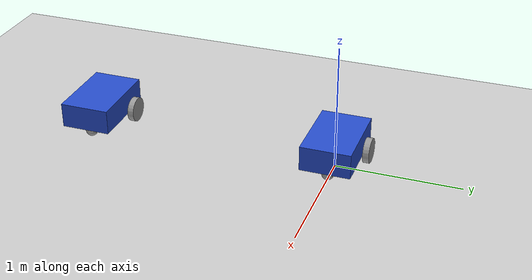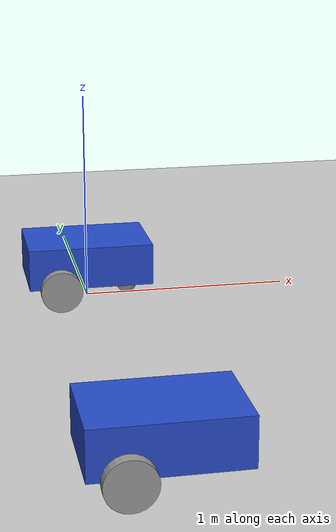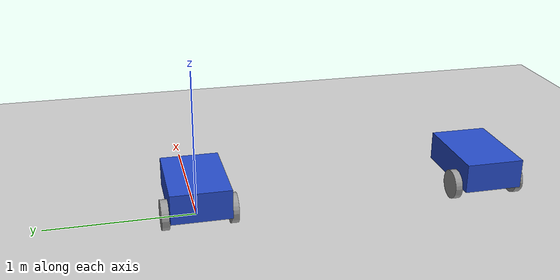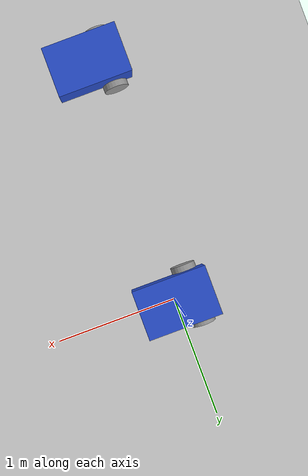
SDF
<sdf version="1.7">
 <world name="default">
  <light name="sun" type="directional">
   <pose>0 0 10 0 -0 0</pose>
   <diffuse>0.8 0.8 0.8 1</diffuse>
   <specular>0.2 0.2 0.2 1</specular>
   <attenuation>
    <range>1000</range>
    <constant>0.9</constant>
    <linear>0.01</linear>
    <quadratic>0.001</quadratic>
   </attenuation>
   <direction>-0.5 0.1 -0.9</direction>
   <spot><inner_angle>0</inner_angle><outer_angle>0</outer_angle><falloff>0</falloff></spot>
  </light>
  <model name="ground_plane">
   <static>1</static>
   <link name="link">
    <collision name="collision">
     <geometry><plane><normal>0 0 1</normal><size>100 100</size></plane></geometry>
     <surface>
      <contact><collide_bitmask>65535</collide_bitmask></contact>
      <friction><ode><mu>100</mu><mu2>50</mu2></ode></friction>
     </surface>
    </collision>
    <visual name="visual">
     <cast_shadows>0</cast_shadows>
     <geometry><plane><normal>0 0 1</normal><size>100 100</size></plane></geometry>
     <material>
      <script><uri>file://media/materials/scripts/gazebo.material</uri><name>Gazebo/Grey</name></script>
     </material>
    </visual>
   </link>
  </model>
  <gravity>0 0 -9.8</gravity>
  <magnetic_field>6e-06 2.3e-05 -4.2e-05</magnetic_field>
  <atmosphere type="adiabatic"/>
  <physics type="ode">
   <max_step_size>0.001</max_step_size>
   <real_time_factor>1</real_time_factor>
   <real_time_update_rate>1000</real_time_update_rate>
  </physics>
  <scene><ambient>0.4 0.4 0.4 1</ambient><background>0.7 0.7 0.7 1</background><shadows>1</shadows></scene>
  <audio><device>default</device></audio>
  <spherical_coordinates>
   <surface_model>EARTH_WGS84</surface_model>
   <latitude_deg>0</latitude_deg>
   <longitude_deg>0</longitude_deg>
   <elevation>0</elevation>
   <heading_deg>0</heading_deg>
  </spherical_coordinates>
  <model name="agent_1">
   <link name="base_footprint">
    <inertial>
     <pose>0.018182 0 0.186364 0 -0 0</pose>
     <mass>5.5</mass>
     <inertia>
      <ixx>0.678894</ixx>
      <ixy>0</ixy>
      <ixz>0.0136364</ixz>
      <iyy>0.897076</iyy>
      <iyz>0</iyz>
      <izz>0.353515</izz>
     </inertia>
    </inertial>
    <collision name="base_footprint_fixed_joint_lump__base_link_collision">
     <pose>0 0 0.2 0 -0 0</pose>
     <geometry><box><size>0.6 0.4 0.2</size></box></geometry>
    </collision>
    <collision name="base_footprint_fixed_joint_lump__caster_wheel_link_collision_1">
     <pose>0.2 0 0.05 0 -0 0</pose>
     <geometry><sphere><radius>0.05</radius></sphere></geometry>
     <surface><friction><ode><mu>0.1</mu><mu2>0.1</mu2></ode></friction></surface>
    </collision>
    <visual name="base_footprint_fixed_joint_lump__base_link_visual">
     <pose>0 0 0.2 0 -0 0</pose>
     <geometry><box><size>0.6 0.4 0.2</size></box></geometry>
     <material>
      <script><name>Gazebo/Blue</name><uri>file://media/materials/scripts/gazebo.material</uri></script>
     </material>
    </visual>
    <visual name="base_footprint_fixed_joint_lump__caster_wheel_link_visual_1">
     <pose>0.2 0 0.05 0 -0 0</pose>
     <geometry><sphere><radius>0.05</radius></sphere></geometry>
     <material>
      <script><name>Gazebo/Grey</name><uri>file://media/materials/scripts/gazebo.material</uri></script>
     </material>
    </visual>
   </link>
   <joint name="base_left_wheel_joint" type="revolute">
    <pose relative_to="base_footprint">-0.15 0.225 0.1 0 -0 0</pose>
    <parent>base_footprint</parent>
    <child>left_wheel_link</child>
    <axis>
     <xyz>0 1 0</xyz>
     <limit><lower>-1e+16</lower><upper>1e+16</upper></limit>
     <dynamics><spring_reference>0</spring_reference><spring_stiffness>0</spring_stiffness></dynamics>
    </axis>
   </joint>
   <link name="left_wheel_link">
    <pose relative_to="base_left_wheel_joint">0 0 0 0 -0 0</pose>
    <inertial>
     <pose>0 0 0 1.5708 -0 0</pose>
     <mass>1</mass>
     <inertia><ixx>0.0108333</ixx><ixy>0</ixy><ixz>0</ixz><iyy>0.0108333</iyy><iyz>0</iyz><izz>0.02</izz></inertia>
    </inertial>
    <collision name="left_wheel_link_collision">
     <pose>0 0 0 1.5708 -0 0</pose>
     <geometry><cylinder><length>0.05</length><radius>0.1</radius></cylinder></geometry>
    </collision>
    <visual name="left_wheel_link_visual">
     <pose>0 0 0 1.5708 -0 0</pose>
     <geometry><cylinder><length>0.05</length><radius>0.1</radius></cylinder></geometry>
     <material>
      <script><name>Gazebo/Grey</name><uri>file://media/materials/scripts/gazebo.material</uri></script>
     </material>
    </visual>
   </link>
   <joint name="base_right_wheel_joint" type="revolute">
    <pose relative_to="base_footprint">-0.15 -0.225 0.1 0 -0 0</pose>
    <parent>base_footprint</parent>
    <child>right_wheel_link</child>
    <axis>
     <xyz>0 1 0</xyz>
     <limit><lower>-1e+16</lower><upper>1e+16</upper></limit>
     <dynamics><spring_reference>0</spring_reference><spring_stiffness>0</spring_stiffness></dynamics>
    </axis>
   </joint>
   <link name="right_wheel_link">
    <pose relative_to="base_right_wheel_joint">0 0 0 0 -0 0</pose>
    <inertial>
     <pose>0 0 0 1.5708 -0 0</pose>
     <mass>1</mass>
     <inertia><ixx>0.0108333</ixx><ixy>0</ixy><ixz>0</ixz><iyy>0.0108333</iyy><iyz>0</iyz><izz>0.02</izz></inertia>
    </inertial>
    <collision name="right_wheel_link_collision">
     <pose>0 0 0 1.5708 -0 0</pose>
     <geometry><cylinder><length>0.05</length><radius>0.1</radius></cylinder></geometry>
    </collision>
    <visual name="right_wheel_link_visual">
     <pose>0 0 0 1.5708 -0 0</pose>
     <geometry><cylinder><length>0.05</length><radius>0.1</radius></cylinder></geometry>
     <material>
      <script><name>Gazebo/Grey</name><uri>file://media/materials/scripts/gazebo.material</uri></script>
     </material>
    </visual>
   </link>
   <static>0</static>
   <plugin name="diff_drive_controller" filename="libgazebo_ros_diff_drive.so">
    <update_rate>50</update_rate>
    <left_joint>base_left_wheel_joint</left_joint>
    <right_joint>base_right_wheel_joint</right_joint>
    <wheel_separation>0.45</wheel_separation>
    <wheel_diameter>0.2</wheel_diameter>
    <publish_odom>1</publish_odom>
    <publish_odom_tf>1</publish_odom_tf>
    <publish_wheel_tf>1</publish_wheel_tf>
    <odometry_topic>odom</odometry_topic>
    <odometry_frame>odom</odometry_frame>
    <robot_base_frame>base_footprint</robot_base_frame>
    <ros><namespace>agent_1</namespace></ros>
   </plugin>
  </model>
  <model name="agent_2">
   <link name="base_footprint">
    <inertial>
     <pose>0.018182 0 0.186364 0 -0 0</pose>
     <mass>5.5</mass>
     <inertia>
      <ixx>0.678894</ixx>
      <ixy>0</ixy>
      <ixz>0.0136364</ixz>
      <iyy>0.897076</iyy>
      <iyz>0</iyz>
      <izz>0.353515</izz>
     </inertia>
    </inertial>
    <collision name="base_footprint_fixed_joint_lump__base_link_collision">
     <pose>0 0 0.2 0 -0 0</pose>
     <geometry><box><size>0.6 0.4 0.2</size></box></geometry>
    </collision>
    <collision name="base_footprint_fixed_joint_lump__caster_wheel_link_collision_1">
     <pose>0.2 0 0.05 0 -0 0</pose>
     <geometry><sphere><radius>0.05</radius></sphere></geometry>
     <surface><friction><ode><mu>0.1</mu><mu2>0.1</mu2></ode></friction></surface>
    </collision>
    <visual name="base_footprint_fixed_joint_lump__base_link_visual">
     <pose>0 0 0.2 0 -0 0</pose>
     <geometry><box><size>0.6 0.4 0.2</size></box></geometry>
     <material>
      <script><name>Gazebo/Blue</name><uri>file://media/materials/scripts/gazebo.material</uri></script>
     </material>
    </visual>
    <visual name="base_footprint_fixed_joint_lump__caster_wheel_link_visual_1">
     <pose>0.2 0 0.05 0 -0 0</pose>
     <geometry><sphere><radius>0.05</radius></sphere></geometry>
     <material>
      <script><name>Gazebo/Grey</name><uri>file://media/materials/scripts/gazebo.material</uri></script>
     </material>
    </visual>
   </link>
   <joint name="base_left_wheel_joint" type="revolute">
    <pose relative_to="base_footprint">-0.15 0.225 0.1 0 -0 0</pose>
    <parent>base_footprint</parent>
    <child>left_wheel_link</child>
    <axis>
     <xyz>0 1 0</xyz>
     <limit><lower>-1e+16</lower><upper>1e+16</upper></limit>
     <dynamics><spring_reference>0</spring_reference><spring_stiffness>0</spring_stiffness></dynamics>
    </axis>
   </joint>
   <link name="left_wheel_link">
    <pose relative_to="base_left_wheel_joint">0 0 0 0 -0 0</pose>
    <inertial>
     <pose>0 0 0 1.5708 -0 0</pose>
     <mass>1</mass>
     <inertia><ixx>0.0108333</ixx><ixy>0</ixy><ixz>0</ixz><iyy>0.0108333</iyy><iyz>0</iyz><izz>0.02</izz></inertia>
    </inertial>
    <collision name="left_wheel_link_collision">
     <pose>0 0 0 1.5708 -0 0</pose>
     <geometry><cylinder><length>0.05</length><radius>0.1</radius></cylinder></geometry>
    </collision>
    <visual name="left_wheel_link_visual">
     <pose>0 0 0 1.5708 -0 0</pose>
     <geometry><cylinder><length>0.05</length><radius>0.1</radius></cylinder></geometry>
     <material>
      <script><name>Gazebo/Grey</name><uri>file://media/materials/scripts/gazebo.material</uri></script>
     </material>
    </visual>
   </link>
   <joint name="base_right_wheel_joint" type="revolute">
    <pose relative_to="base_footprint">-0.15 -0.225 0.1 0 -0 0</pose>
    <parent>base_footprint</parent>
    <child>right_wheel_link</child>
    <axis>
     <xyz>0 1 0</xyz>
     <limit><lower>-1e+16</lower><upper>1e+16</upper></limit>
     <dynamics><spring_reference>0</spring_reference><spring_stiffness>0</spring_stiffness></dynamics>
    </axis>
   </joint>
   <link name="right_wheel_link">
    <pose relative_to="base_right_wheel_joint">0 0 0 0 -0 0</pose>
    <inertial>
     <pose>0 0 0 1.5708 -0 0</pose>
     <mass>1</mass>
     <inertia><ixx>0.0108333</ixx><ixy>0</ixy><ixz>0</ixz><iyy>0.0108333</iyy><iyz>0</iyz><izz>0.02</izz></inertia>
    </inertial>
    <collision name="right_wheel_link_collision">
     <pose>0 0 0 1.5708 -0 0</pose>
     <geometry><cylinder><length>0.05</length><radius>0.1</radius></cylinder></geometry>
    </collision>
    <visual name="right_wheel_link_visual">
     <pose>0 0 0 1.5708 -0 0</pose>
     <geometry><cylinder><length>0.05</length><radius>0.1</radius></cylinder></geometry>
     <material>
      <script><name>Gazebo/Grey</name><uri>file://media/materials/scripts/gazebo.material</uri></script>
     </material>
    </visual>
   </link>
   <static>0</static>
   <plugin name="diff_drive_controller" filename="libgazebo_ros_diff_drive.so">
    <update_rate>50</update_rate>
    <left_joint>base_left_wheel_joint</left_joint>
    <right_joint>base_right_wheel_joint</right_joint>
    <wheel_separation>0.45</wheel_separation>
    <wheel_diameter>0.2</wheel_diameter>
    <publish_odom>1</publish_odom>
    <publish_odom_tf>1</publish_odom_tf>
    <publish_wheel_tf>1</publish_wheel_tf>
    <odometry_topic>odom</odometry_topic>
    <odometry_frame>odom</odometry_frame>
    <robot_base_frame>base_footprint</robot_base_frame>
    <ros><namespace>agent_2</namespace></ros>
   </plugin>
   <pose>0 -2 0 0 -0 0</pose>
  </model>
 </world>
</sdf>
